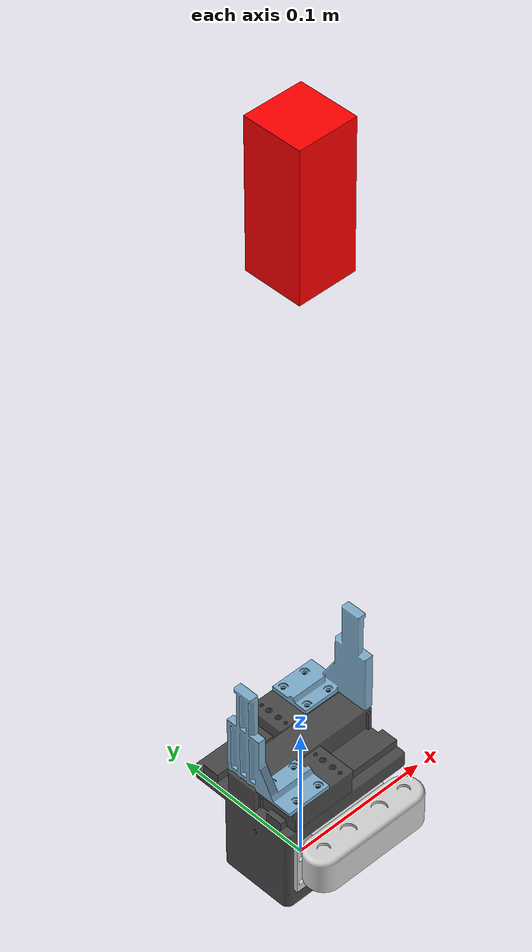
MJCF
<mujoco model="efg-c80">
  <compiler angle="radian" meshdir="assets" autolimits="true"/>
  <option cone="elliptic" impratio="10"/>
  <option integrator="implicitfast"/>

  <default>
    <default class="efgc80">
      <material specular="0.5" shininess="0.25"/>
	  <joint type="slide" axis="1 0 0" range="0 0.041"
	    armature="0.001" damping="0.1" solimplimit="0.95 0.99 0.001" solreflimit="0.005 1"/>
	  <general biastype="affine" ctrlrange="0 0.041" forcerange="-150 150"/>
      <default class="visual">
        <geom type="mesh" contype="0" conaffinity="0" group="2"/>
      </default>
      <default class="collision">
        <geom mass="1e-6" type="mesh" group="3"/>
		<default class="collision_pad">
		  <geom type="box" solimp="0.95 0.99 0.001" solref="0.004 1" priority="1"/>
		  <default class="collision_fe">
		    <geom size="0.0025 0.007 0.0145" pos="0 0 0.0155" friction="0.7"/>
          </default>
		  <default class="collision_fa">
		    <geom size="0.0025 0.013 0.005" pos="0 0 -0.005" friction="0.7"/>
          </default>
		  <default class="collision_fb">
		    <geom size="0.0025 0.013 0.015" pos="0 0 -0.026" friction="0.6"/>
          </default>
		</default>
      </default>
    </default>
  </default>

  <asset>
    <material class="efgc80" name="black" rgba="0.033 0.033 0.033 1"/>
    <material class="efgc80" name="jointgray" rgba="0.278 0.278 0.278 1"/>
    <material class="efgc80" name="linkgray" rgba="0.82 0.82 0.82 1"/>
    <material class="efgc80" name="urblue" rgba="0.49 0.678 0.8 1"/>
    <mesh file="efg-c80_main.obj"/>
    <mesh file="efg-c80_lock02.obj"/>
    <mesh file="efg-c80_finger02v2.obj"/>
    <mesh file="efg-c80_finger_c01v2.obj"/>
    <mesh file="efg-c80_finger_c02v2.obj"/>
    <mesh file="efg-c80_d435.obj"/>
    <mesh file="efg-c80_d435_holder.obj"/>
  </asset>

  <worldbody>
    <light mode="targetbodycom" target="hand" pos="0 -1 2"/>
    <body name="hand" pos="0 0 0">
	  <camera name="d435" pos="0 -0.0525 0.0585" xyaxes="1 0 0 0 -1 0"/>
      <inertial mass="1.5" pos="0 0 0.0485" diaginertia="0.0023 0.002 0.0019"/>
	  <geom mesh="efg-c80_main" material="jointgray" class="visual"/>
	  <geom mesh="efg-c80_d435" material="linkgray" class="visual"/>
	  <geom mesh="efg-c80_d435_holder" material="linkgray" class="visual"/>
	  <geom mesh="efg-c80_main" class="collision"/>
	  <geom mesh="efg-c80_d435" class="collision"/>
	  <geom mesh="efg-c80_d435_holder" class="collision"/>
      <body name="finger01" pos="0 0 0.081">
        <joint name="finger01_joint" class="efgc80"/>
	    <geom mesh="efg-c80_lock02" material="jointgray" class="visual"/>
	    <geom mesh="efg-c80_finger02v2" material="urblue" class="visual"/>
	    <geom mesh="efg-c80_lock02" class="collision"/>
		<body name="finger01_bar">
	      <geom mesh="efg-c80_finger_c01v2" class="collision"/>
		</body>
		<body name="finger01_link">
	      <geom mesh="efg-c80_finger_c02v2" class="collision"/>
		</body>
		<body name="pad01" pos="-0.044 -0.002 0.06">
	      <geom class="collision_fe"/>
	      <geom class="collision_fa"/>
	      <geom class="collision_fb"/>
		</body>
      </body>
      <body name="finger02" pos="0 0 0.081" quat="0 0 0 1">
        <joint name="finger02_joint" class="efgc80"/>
	    <geom mesh="efg-c80_lock02" material="jointgray" class="visual"/>
	    <geom mesh="efg-c80_finger02v2" material="urblue" class="visual"/>
	    <geom mesh="efg-c80_lock02" class="collision"/>
		<body name="finger02_bar">
	      <geom mesh="efg-c80_finger_c01v2" class="collision"/>
		</body>
		<body name="finger02_link">
	      <geom mesh="efg-c80_finger_c02v2" class="collision"/>
		</body>
		<body name="pad02" pos="-0.044 -0.002 0.06">
	      <geom class="collision_fe"/>
	      <geom class="collision_fa"/>
	      <geom class="collision_fb"/>
		</body>
      </body>
    </body>
	<body name="test_cube">
	  <joint type="free"/>
	  <geom type="box"  pos="0. 0 0.5" size="0.02 0.02 0.05" rgba="1 0 0 1"/>
	</body>
  </worldbody>

  <contact>
    <exclude body1="hand" body2="finger01"/>
    <exclude body1="hand" body2="finger02"/>

    <exclude body1="finger01" body2="finger01_link"/>
    <exclude body1="finger01_link" body2="finger01_bar"/>
    <exclude body1="finger01_link" body2="pad01"/>
    <exclude body1="finger01_bar" body2="pad01"/>

    <exclude body1="finger02" body2="finger02_link"/>
    <exclude body1="finger02_link" body2="finger02_bar"/>
    <exclude body1="finger02_link" body2="pad02"/>
    <exclude body1="finger02_bar" body2="pad02"/>
  </contact>

  <tendon>
    <fixed name="split">
      <joint joint="finger01_joint" coef="0.5"/>
      <joint joint="finger02_joint" coef="0.5"/>
    </fixed>
  </tendon>

  <equality>
    <joint name="efg-c80_fingers" joint1="finger01_joint" joint2="finger02_joint"
	  polycoef="0 1 0 0 0" solimp="0.95 0.99 0.001" solref="0.005 1"/>
  </equality>

  <actuator>
	<general class="efgc80" name="finger_actuator" tendon="split"
	  ctrlrange="0 255" gainprm="0.48235294117647054 0 0" biasprm="0 -3000 -300" dynprm="0.3"/>
  </actuator>

</mujoco>
